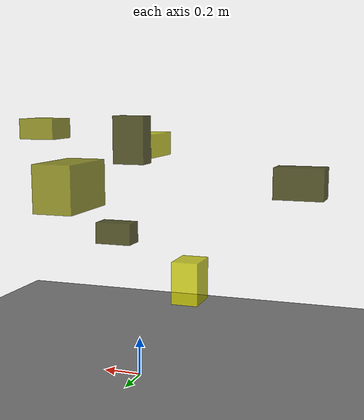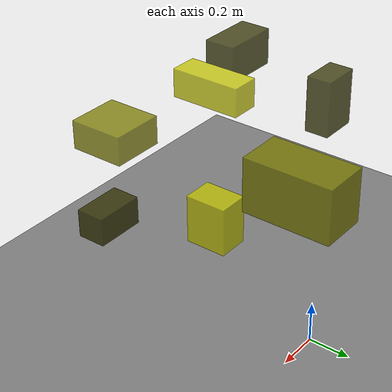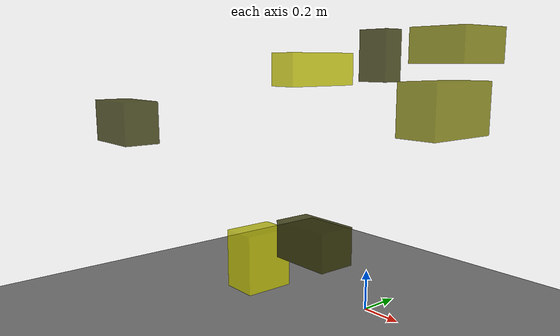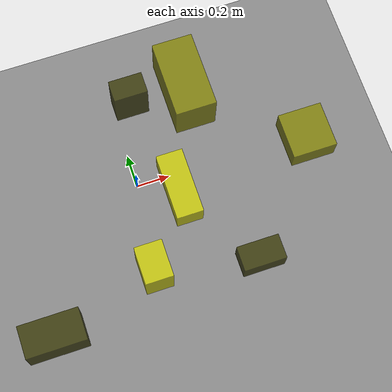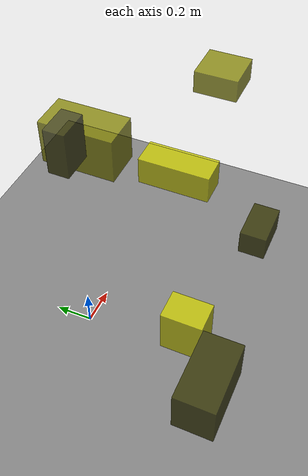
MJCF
<?xml version="1.0"?>
<mujoco model="obstacle_scene">
  <compiler angle="radian" coordinate="local"/>
  <option timestep="0.001" gravity="0 0 -9.81"/>

  <asset>
    <material name="obstacle_mat" rgba="0.8 0.8 0.0 0.8"/>
    <material name="ground_mat" rgba="0.5 0.5 0.5 1"/>
  </asset>

  <worldbody>
    <!-- Ground plane -->
    <geom name="ground" type="plane" size="3 3 0.1" material="ground_mat"/>

    <!-- Obstacles -->
    <body name="obstacle_0" pos="0.459058 -0.771475 0.604623">
      <geom name="obs_0" type="box" size="0.114866 0.067178 0.066112" rgba="0.2 0.2 0.0 0.8"/>
    </body>
    <body name="obstacle_1" pos="0.326833 0.115253 1.004122">
      <geom name="obs_1" type="box" size="0.103855 0.197652 0.121211" rgba="0.5 0.5 0.0 0.8"/>
    </body>
    <body name="obstacle_2" pos="-0.079088 -0.600709 0.377619">
      <geom name="obs_2" type="box" size="0.078810 0.106634 0.125272" rgba="0.8 0.8 0.0 0.8"/>
    </body>
    <body name="obstacle_3" pos="0.018969 0.032652 1.235576">
      <geom name="obs_3" type="box" size="0.080897 0.051613 0.118036" rgba="0.2 0.2 0.0 0.8"/>
    </body>
    <body name="obstacle_4" pos="0.751629 -0.424944 1.260687">
      <geom name="obs_4" type="box" size="0.105072 0.109341 0.057439" rgba="0.5 0.5 0.0 0.8"/>
    </body>
    <body name="obstacle_5" pos="0.110709 -0.462817 1.179154">
      <geom name="obs_5" type="box" size="0.064103 0.160259 0.064374" rgba="0.8 0.8 0.0 0.8"/>
    </body>
    <body name="obstacle_6" pos="-0.664041 -0.906148 0.941059">
      <geom name="obs_6" type="box" size="0.149983 0.081184 0.094272" rgba="0.2 0.2 0.0 0.8"/>
    </body>
  </worldbody>
</mujoco>
